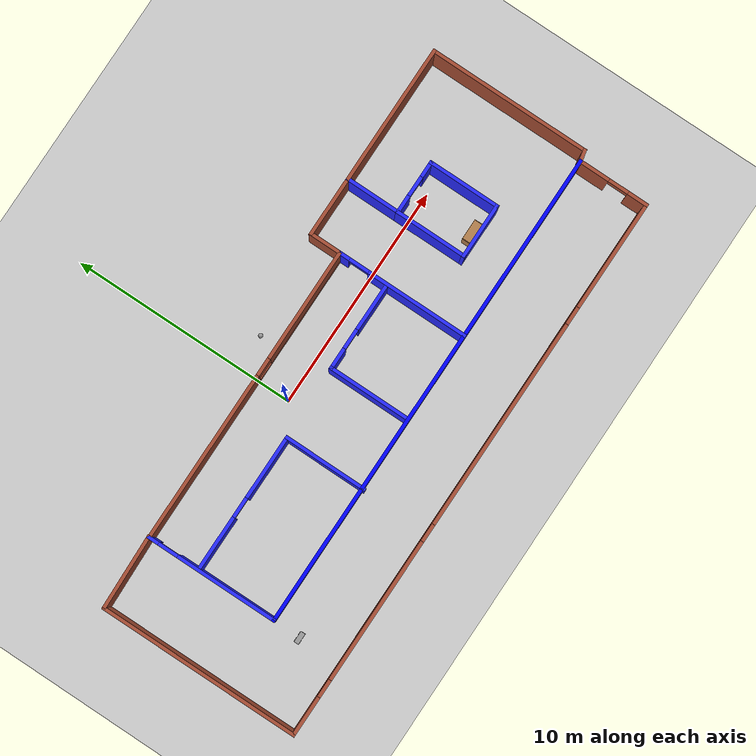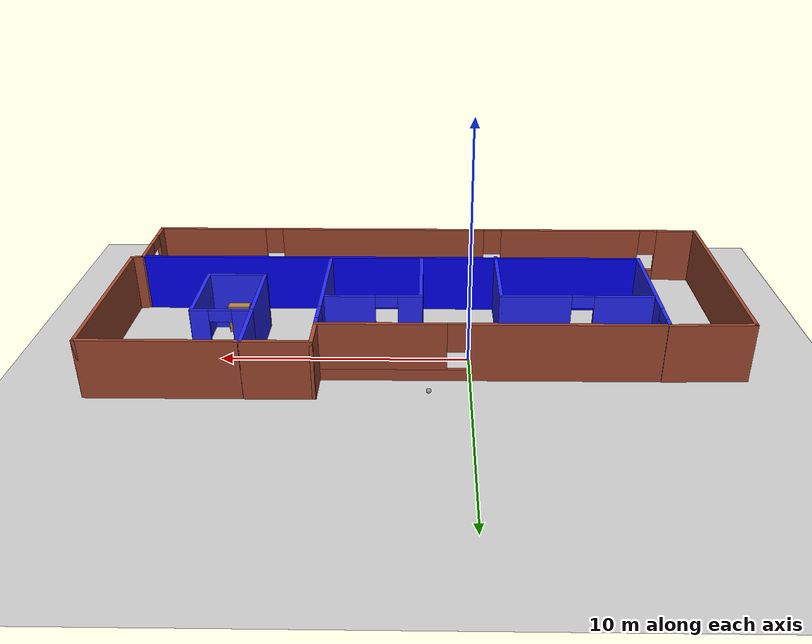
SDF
<sdf version="1.6">
 <world name="default">
  <plugin name="welcome_message" filename="libwelcome_message.so"/>
  <light name="sun" type="directional">
   <pose>0 0 10 0 -0 0</pose>
   <diffuse>0.8 0.8 0.8 1</diffuse>
   <specular>0.2 0.2 0.2 1</specular>
   <attenuation>
    <range>1000</range>
    <constant>0.9</constant>
    <linear>0.01</linear>
    <quadratic>0.001</quadratic>
   </attenuation>
   <direction>-0.5 0.1 -0.9</direction>
  </light>
  <model name="ground_plane">
   <static>1</static>
   <link name="link">
    <collision name="collision">
     <geometry><plane><normal>0 0 1</normal><size>100 100</size></plane></geometry>
     <surface><friction><ode><mu>100</mu><mu2>50</mu2></ode></friction></surface>
    </collision>
    <visual name="visual">
     <cast_shadows>0</cast_shadows>
     <geometry><plane><normal>0 0 1</normal><size>100 100</size></plane></geometry>
     <material>
      <script><uri>file://media/materials/scripts/gazebo.material</uri><name>Gazebo/Grey</name></script>
     </material>
    </visual>
   </link>
  </model>
  <gravity>0 0 -9.8</gravity>
  <magnetic_field>6e-06 2.3e-05 -4.2e-05</magnetic_field>
  <atmosphere type="adiabatic"/>
  <physics name="default_physics" default="0" type="ode">
   <max_step_size>0.001</max_step_size>
   <real_time_factor>1</real_time_factor>
   <real_time_update_rate>1000</real_time_update_rate>
  </physics>
  <scene><ambient>0.4 0.4 0.4 1</ambient><background>0.7 0.7 0.7 1</background><shadows>1</shadows></scene>
  <spherical_coordinates>
   <surface_model>EARTH_WGS84</surface_model>
   <latitude_deg>0</latitude_deg>
   <longitude_deg>0</longitude_deg>
   <elevation>0</elevation>
   <heading_deg>0</heading_deg>
  </spherical_coordinates>
  <model name="Building">
   <pose>1.9308 -2.3474 0 0 -0 0</pose>
   <link name="Wall_1">
    <collision name="Wall_1_Collision">
     <geometry><box><size>8.9769 0.15 2.5</size></box></geometry>
     <pose>0 0 1.25 0 -0 0</pose>
    </collision>
    <visual name="Wall_1_Visual">
     <pose>0 0 1.25 0 -0 0</pose>
     <geometry><box><size>8.9769 0.15 2.5</size></box></geometry>
     <material>
      <script><uri>file://media/materials/scripts/gazebo.material</uri><name>Gazebo/Bricks</name></script>
      <ambient>1 1 1 1</ambient>
     </material>
     <meta><layer>0</layer></meta>
    </visual>
    <pose>-12.6561 -0.736467 0 0 0 -1.56818</pose>
   </link>
   <link name="Wall_11">
    <pose>-2.73111 3.78853 0 0 -0 0.00173</pose>
    <visual name="Wall_11_Visual_0">
     <pose>-2.93301 0 1.25 0 -0 0</pose>
     <geometry><box><size>7.65719 0.15 2.5</size></box></geometry>
     <material>
      <script><uri>file://media/materials/scripts/gazebo.material</uri><name>Gazebo/Bricks</name></script>
      <ambient>1 1 1 1</ambient>
     </material>
     <meta><layer>0</layer></meta>
    </visual>
    <collision name="Wall_11_Collision_0">
     <geometry><box><size>7.65719 0.15 2.5</size></box></geometry>
     <pose>-2.93301 0 1.25 0 -0 0</pose>
    </collision>
    <visual name="Wall_11_Visual_1">
     <pose>3.8286 0 0.25 0 -0 0</pose>
     <geometry><box><size>5.86602 0.15 0.5</size></box></geometry>
     <material>
      <script><uri>file://media/materials/scripts/gazebo.material</uri><name>Gazebo/Bricks</name></script>
      <ambient>1 1 1 1</ambient>
     </material>
     <meta><layer>0</layer></meta>
    </visual>
    <collision name="Wall_11_Collision_1">
     <geometry><box><size>5.86602 0.15 0.5</size></box></geometry>
     <pose>3.8286 0 0.25 0 -0 0</pose>
    </collision>
    <visual name="Wall_11_Visual_2">
     <pose>4.2286 0 1.5 0 -0 0</pose>
     <geometry><box><size>5.06602 0.15 2</size></box></geometry>
     <material>
      <script><uri>file://media/materials/scripts/gazebo.material</uri><name>Gazebo/Bricks</name></script>
      <ambient>1 1 1 1</ambient>
     </material>
     <meta><layer>0</layer></meta>
    </visual>
    <collision name="Wall_11_Collision_2">
     <geometry><box><size>5.06602 0.15 2</size></box></geometry>
     <pose>4.2286 0 1.5 0 -0 0</pose>
    </collision>
    <visual name="Wall_11_Visual_3">
     <pose>1.29559 0 1.9 0 -0 0</pose>
     <geometry><box><size>0.8 0.15 1.2</size></box></geometry>
     <material>
      <script><uri>file://media/materials/scripts/gazebo.material</uri><name>Gazebo/Bricks</name></script>
      <ambient>1 1 1 1</ambient>
     </material>
     <meta><layer>0</layer></meta>
    </visual>
    <collision name="Wall_11_Collision_3">
     <geometry><box><size>0.8 0.15 1.2</size></box></geometry>
     <pose>1.29559 0 1.9 0 -0 0</pose>
    </collision>
   </link>
   <link name="Wall_12">
    <pose>3.95546 0.875098 0 0 0 -1.5708</pose>
    <visual name="Wall_12_Visual_0">
     <pose>-2.73271 0 1.25 0 -0 0</pose>
     <geometry><box><size>0.534571 0.15 2.5</size></box></geometry>
     <material>
      <script><uri>file://media/materials/scripts/gazebo.material</uri><name>Gazebo/Grey</name></script>
      <ambient>0.14902 0.160784 1 1</ambient>
     </material>
     <meta><layer>0</layer></meta>
    </visual>
    <collision name="Wall_12_Collision_0">
     <geometry><box><size>0.534571 0.15 2.5</size></box></geometry>
     <pose>-2.73271 0 1.25 0 -0 0</pose>
    </collision>
    <visual name="Wall_12_Visual_1">
     <pose>0.717286 0 1.25 0 -0 0</pose>
     <geometry><box><size>4.56543 0.15 2.5</size></box></geometry>
     <material>
      <script><uri>file://media/materials/scripts/gazebo.material</uri><name>Gazebo/Grey</name></script>
      <ambient>0.14902 0.160784 1 1</ambient>
     </material>
     <meta><layer>0</layer></meta>
    </visual>
    <collision name="Wall_12_Collision_1">
     <geometry><box><size>4.56543 0.15 2.5</size></box></geometry>
     <pose>0.717286 0 1.25 0 -0 0</pose>
    </collision>
    <visual name="Wall_12_Visual_2">
     <pose>-2.01543 0 2.25 0 -0 0</pose>
     <geometry><box><size>0.9 0.15 0.5</size></box></geometry>
     <material>
      <script><uri>file://media/materials/scripts/gazebo.material</uri><name>Gazebo/Grey</name></script>
      <ambient>0.14902 0.160784 1 1</ambient>
     </material>
     <meta><layer>0</layer></meta>
    </visual>
    <collision name="Wall_12_Collision_2">
     <geometry><box><size>0.9 0.15 0.5</size></box></geometry>
     <pose>-2.01543 0 2.25 0 -0 0</pose>
    </collision>
   </link>
   <link name="Wall_14">
    <collision name="Wall_14_Collision">
     <geometry><box><size>3.75 0.15 2.5</size></box></geometry>
     <pose>0 0 1.25 0 -0 0</pose>
    </collision>
    <visual name="Wall_14_Visual">
     <pose>0 0 1.25 0 -0 0</pose>
     <geometry><box><size>3.75 0.15 2.5</size></box></geometry>
     <material>
      <script><uri>file://media/materials/scripts/gazebo.material</uri><name>Gazebo/Grey</name></script>
      <ambient>0.14902 0.160784 1 1</ambient>
     </material>
     <meta><layer>0</layer></meta>
    </visual>
    <pose>0.007902 -0.236293 0 0 -0 1.5708</pose>
   </link>
   <link name="Wall_15">
    <pose>1.9329 1.56371 0 0 -0 0</pose>
    <visual name="Wall_15_Visual_0">
     <pose>-1.50515 0 1.25 0 -0 0</pose>
     <geometry><box><size>0.989706 0.15 2.5</size></box></geometry>
     <material>
      <script><uri>file://media/materials/scripts/gazebo.material</uri><name>Gazebo/Grey</name></script>
      <ambient>0.14902 0.160784 1 1</ambient>
     </material>
     <meta><layer>0</layer></meta>
    </visual>
    <collision name="Wall_15_Collision_0">
     <geometry><box><size>0.989706 0.15 2.5</size></box></geometry>
     <pose>-1.50515 0 1.25 0 -0 0</pose>
    </collision>
    <visual name="Wall_15_Visual_1">
     <pose>0.944853 0 1.25 0 -0 0</pose>
     <geometry><box><size>2.11029 0.15 2.5</size></box></geometry>
     <material>
      <script><uri>file://media/materials/scripts/gazebo.material</uri><name>Gazebo/Grey</name></script>
      <ambient>0.14902 0.160784 1 1</ambient>
     </material>
     <meta><layer>0</layer></meta>
    </visual>
    <collision name="Wall_15_Collision_1">
     <geometry><box><size>2.11029 0.15 2.5</size></box></geometry>
     <pose>0.944853 0 1.25 0 -0 0</pose>
    </collision>
    <visual name="Wall_15_Visual_2">
     <pose>-0.560294 0 2.25 0 -0 0</pose>
     <geometry><box><size>0.9 0.15 0.5</size></box></geometry>
     <material>
      <script><uri>file://media/materials/scripts/gazebo.material</uri><name>Gazebo/Grey</name></script>
      <ambient>0.14902 0.160784 1 1</ambient>
     </material>
     <meta><layer>0</layer></meta>
    </visual>
    <collision name="Wall_15_Collision_2">
     <geometry><box><size>0.9 0.15 0.5</size></box></geometry>
     <pose>-0.560294 0 2.25 0 -0 0</pose>
    </collision>
   </link>
   <link name="Wall_17">
    <collision name="Wall_17_Collision">
     <geometry><box><size>1.5 0.15 2.5</size></box></geometry>
     <pose>0 0 1.25 0 -0 0</pose>
    </collision>
    <visual name="Wall_17_Visual">
     <pose>0 0 1.25 0 -0 0</pose>
     <geometry><box><size>1.5 0.15 2.5</size></box></geometry>
     <material>
      <script><uri>file://media/materials/scripts/gazebo.material</uri><name>Gazebo/Bricks</name></script>
      <ambient>1 1 1 1</ambient>
     </material>
     <meta><layer>0</layer></meta>
    </visual>
    <pose>3.95546 4.4751 0 0 -0 1.5708</pose>
   </link>
   <link name="Wall_18">
    <collision name="Wall_18_Collision">
     <geometry><box><size>2.75 0.15 2.5</size></box></geometry>
     <pose>0 0 1.25 0 -0 0</pose>
    </collision>
    <visual name="Wall_18_Visual">
     <pose>0 0 1.25 0 -0 0</pose>
     <geometry><box><size>2.75 0.15 2.5</size></box></geometry>
     <material>
      <script><uri>file://media/materials/scripts/gazebo.material</uri><name>Gazebo/Bricks</name></script>
      <ambient>1 1 1 1</ambient>
     </material>
     <meta><layer>0</layer></meta>
    </visual>
    <pose>5.25546 5.1501 0 0 -0 0</pose>
   </link>
   <link name="Wall_19">
    <collision name="Wall_19_Collision">
     <geometry><box><size>2.5 0.15 2.5</size></box></geometry>
     <pose>0 0 1.25 0 -0 0</pose>
    </collision>
    <visual name="Wall_19_Visual">
     <pose>0 0 1.25 0 -0 0</pose>
     <geometry><box><size>2.5 0.15 2.5</size></box></geometry>
     <material>
      <script><uri>file://media/materials/scripts/gazebo.material</uri><name>Gazebo/Grey</name></script>
      <ambient>0.14902 0.160784 1 1</ambient>
     </material>
     <meta><layer>0</layer></meta>
    </visual>
    <pose>6.55546 3.9751 0 0 0 -1.5708</pose>
   </link>
   <link name="Wall_2">
    <pose>-0.219541 -5.1499 0 0 -0 0</pose>
    <visual name="Wall_2_Visual_0">
     <pose>-11.5869 0 1.25 0 -0 0</pose>
     <geometry><box><size>1.82615 0.15 2.5</size></box></geometry>
     <material>
      <script><uri>file://media/materials/scripts/gazebo.material</uri><name>Gazebo/Bricks</name></script>
      <ambient>1 1 1 1</ambient>
     </material>
     <meta><layer>0</layer></meta>
    </visual>
    <collision name="Wall_2_Collision_0">
     <geometry><box><size>1.82615 0.15 2.5</size></box></geometry>
     <pose>-11.5869 0 1.25 0 -0 0</pose>
    </collision>
    <visual name="Wall_2_Visual_1">
     <pose>0.913073 0 0.25 0 -0 0</pose>
     <geometry><box><size>23.1739 0.15 0.5</size></box></geometry>
     <material>
      <script><uri>file://media/materials/scripts/gazebo.material</uri><name>Gazebo/Bricks</name></script>
      <ambient>1 1 1 1</ambient>
     </material>
     <meta><layer>0</layer></meta>
    </visual>
    <collision name="Wall_2_Collision_1">
     <geometry><box><size>23.1739 0.15 0.5</size></box></geometry>
     <pose>0.913073 0 0.25 0 -0 0</pose>
    </collision>
    <visual name="Wall_2_Visual_2">
     <pose>-6.65391 0 1.5 0 -0 0</pose>
     <geometry><box><size>6.43988 0.15 2</size></box></geometry>
     <material>
      <script><uri>file://media/materials/scripts/gazebo.material</uri><name>Gazebo/Bricks</name></script>
      <ambient>1 1 1 1</ambient>
     </material>
     <meta><layer>0</layer></meta>
    </visual>
    <collision name="Wall_2_Collision_2">
     <geometry><box><size>6.43988 0.15 2</size></box></geometry>
     <pose>-6.65391 0 1.5 0 -0 0</pose>
    </collision>
    <visual name="Wall_2_Visual_3">
     <pose>2.06633 0 1.5 0 -0 0</pose>
     <geometry><box><size>9.4006 0.15 2</size></box></geometry>
     <material>
      <script><uri>file://media/materials/scripts/gazebo.material</uri><name>Gazebo/Bricks</name></script>
      <ambient>1 1 1 1</ambient>
     </material>
     <meta><layer>0</layer></meta>
    </visual>
    <collision name="Wall_2_Collision_3">
     <geometry><box><size>9.4006 0.15 2</size></box></geometry>
     <pose>2.06633 0 1.5 0 -0 0</pose>
    </collision>
    <visual name="Wall_2_Visual_4">
     <pose>10.0333 0 1.5 0 -0 0</pose>
     <geometry><box><size>4.93337 0.15 2</size></box></geometry>
     <material>
      <script><uri>file://media/materials/scripts/gazebo.material</uri><name>Gazebo/Bricks</name></script>
      <ambient>1 1 1 1</ambient>
     </material>
     <meta><layer>0</layer></meta>
    </visual>
    <collision name="Wall_2_Collision_4">
     <geometry><box><size>4.93337 0.15 2</size></box></geometry>
     <pose>10.0333 0 1.5 0 -0 0</pose>
    </collision>
    <visual name="Wall_2_Visual_5">
     <pose>-10.2739 0 1.9 0 -0 0</pose>
     <geometry><box><size>0.8 0.15 1.2</size></box></geometry>
     <material>
      <script><uri>file://media/materials/scripts/gazebo.material</uri><name>Gazebo/Bricks</name></script>
      <ambient>1 1 1 1</ambient>
     </material>
     <meta><layer>0</layer></meta>
    </visual>
    <collision name="Wall_2_Collision_5">
     <geometry><box><size>0.8 0.15 1.2</size></box></geometry>
     <pose>-10.2739 0 1.9 0 -0 0</pose>
    </collision>
    <visual name="Wall_2_Visual_6">
     <pose>-3.03397 0 1.9 0 -0 0</pose>
     <geometry><box><size>0.8 0.15 1.2</size></box></geometry>
     <material>
      <script><uri>file://media/materials/scripts/gazebo.material</uri><name>Gazebo/Bricks</name></script>
      <ambient>1 1 1 1</ambient>
     </material>
     <meta><layer>0</layer></meta>
    </visual>
    <collision name="Wall_2_Collision_6">
     <geometry><box><size>0.8 0.15 1.2</size></box></geometry>
     <pose>-3.03397 0 1.9 0 -0 0</pose>
    </collision>
    <visual name="Wall_2_Visual_7">
     <pose>7.16662 0 1.9 0 -0 0</pose>
     <geometry><box><size>0.8 0.15 1.2</size></box></geometry>
     <material>
      <script><uri>file://media/materials/scripts/gazebo.material</uri><name>Gazebo/Bricks</name></script>
      <ambient>1 1 1 1</ambient>
     </material>
     <meta><layer>0</layer></meta>
    </visual>
    <collision name="Wall_2_Collision_7">
     <geometry><box><size>0.8 0.15 1.2</size></box></geometry>
     <pose>7.16662 0 1.9 0 -0 0</pose>
    </collision>
   </link>
   <link name="Wall_20">
    <pose>7.73046 2.8001 0 0 -0 0</pose>
    <visual name="Wall_20_Visual_0">
     <pose>-0.825337 0 1.25 0 -0 0</pose>
     <geometry><box><size>0.849326 0.15 2.5</size></box></geometry>
     <material>
      <script><uri>file://media/materials/scripts/gazebo.material</uri><name>Gazebo/Grey</name></script>
      <ambient>0.14902 0.160784 1 1</ambient>
     </material>
     <meta><layer>0</layer></meta>
    </visual>
    <collision name="Wall_20_Collision_0">
     <geometry><box><size>0.849326 0.15 2.5</size></box></geometry>
     <pose>-0.825337 0 1.25 0 -0 0</pose>
    </collision>
    <visual name="Wall_20_Visual_1">
     <pose>0.874663 0 1.25 0 -0 0</pose>
     <geometry><box><size>0.750674 0.15 2.5</size></box></geometry>
     <material>
      <script><uri>file://media/materials/scripts/gazebo.material</uri><name>Gazebo/Grey</name></script>
      <ambient>0.14902 0.160784 1 1</ambient>
     </material>
     <meta><layer>0</layer></meta>
    </visual>
    <collision name="Wall_20_Collision_1">
     <geometry><box><size>0.750674 0.15 2.5</size></box></geometry>
     <pose>0.874663 0 1.25 0 -0 0</pose>
    </collision>
    <visual name="Wall_20_Visual_2">
     <pose>0.049326 0 2.25 0 -0 0</pose>
     <geometry><box><size>0.9 0.15 0.5</size></box></geometry>
     <material>
      <script><uri>file://media/materials/scripts/gazebo.material</uri><name>Gazebo/Grey</name></script>
      <ambient>0.14902 0.160784 1 1</ambient>
     </material>
     <meta><layer>0</layer></meta>
    </visual>
    <collision name="Wall_20_Collision_2">
     <geometry><box><size>0.9 0.15 0.5</size></box></geometry>
     <pose>0.049326 0 2.25 0 -0 0</pose>
    </collision>
   </link>
   <link name="Wall_21">
    <collision name="Wall_21_Collision">
     <geometry><box><size>3.25 0.15 2.5</size></box></geometry>
     <pose>0 0 1.25 0 -0 0</pose>
    </collision>
    <visual name="Wall_21_Visual">
     <pose>0 0 1.25 0 -0 0</pose>
     <geometry><box><size>3.25 0.15 2.5</size></box></geometry>
     <material>
      <script><uri>file://media/materials/scripts/gazebo.material</uri><name>Gazebo/Grey</name></script>
      <ambient>0.14902 0.160784 1 1</ambient>
     </material>
     <meta><layer>0</layer></meta>
    </visual>
    <pose>8.90546 1.2501 0 0 0 -1.5708</pose>
   </link>
   <link name="Wall_22">
    <collision name="Wall_22_Collision">
     <geometry><box><size>2.5 0.15 2.5</size></box></geometry>
     <pose>0 0 1.25 0 -0 0</pose>
    </collision>
    <visual name="Wall_22_Visual">
     <pose>0 0 1.25 0 -0 0</pose>
     <geometry><box><size>2.5 0.15 2.5</size></box></geometry>
     <material>
      <script><uri>file://media/materials/scripts/gazebo.material</uri><name>Gazebo/Grey</name></script>
      <ambient>0.152941 0.164706 1 1</ambient>
     </material>
     <meta><layer>0</layer></meta>
    </visual>
    <pose>7.73046 -0.299902 0 0 -0 3.14159</pose>
   </link>
   <link name="Wall_23">
    <collision name="Wall_23_Collision">
     <geometry><box><size>3.25 0.15 2.5</size></box></geometry>
     <pose>0 0 1.25 0 -0 0</pose>
    </collision>
    <visual name="Wall_23_Visual">
     <pose>0 0 1.25 0 -0 0</pose>
     <geometry><box><size>3.25 0.15 2.5</size></box></geometry>
     <material>
      <script><uri>file://media/materials/scripts/gazebo.material</uri><name>Gazebo/Grey</name></script>
      <ambient>0.14902 0.160784 1 1</ambient>
     </material>
     <meta><layer>0</layer></meta>
    </visual>
    <pose>6.55546 1.2501 0 0 -0 1.5708</pose>
   </link>
   <link name="Wall_25">
    <collision name="Wall_25_Collision">
     <geometry><box><size>6.25 0.15 2.5</size></box></geometry>
     <pose>0 0 1.25 0 -0 0</pose>
    </collision>
    <visual name="Wall_25_Visual">
     <pose>0 0 1.25 0 -0 0</pose>
     <geometry><box><size>6.25 0.15 2.5</size></box></geometry>
     <material>
      <script><uri>file://media/materials/scripts/gazebo.material</uri><name>Gazebo/Bricks</name></script>
      <ambient>1 1 1 1</ambient>
     </material>
     <meta><layer>0</layer></meta>
    </visual>
    <pose>9.60546 5.1501 0 0 -0 0</pose>
   </link>
   <link name="Wall_26">
    <collision name="Wall_26_Collision">
     <geometry><box><size>7.25 0.15 2.5</size></box></geometry>
     <pose>0 0 1.25 0 -0 0</pose>
    </collision>
    <visual name="Wall_26_Visual">
     <pose>0 0 1.25 0 -0 0</pose>
     <geometry><box><size>7.25 0.15 2.5</size></box></geometry>
     <material>
      <script><uri>file://media/materials/scripts/gazebo.material</uri><name>Gazebo/Bricks</name></script>
      <ambient>1 1 1 1</ambient>
     </material>
     <meta><layer>0</layer></meta>
    </visual>
    <pose>12.6555 1.6001 0 0 0 -1.5708</pose>
   </link>
   <link name="Wall_27">
    <collision name="Wall_27_Collision">
     <geometry><box><size>0.610977 0.15 2.5</size></box></geometry>
     <pose>0 0 1.25 0 -0 0</pose>
    </collision>
    <visual name="Wall_27_Visual">
     <pose>0 0 1.25 0 -0 0</pose>
     <geometry><box><size>0.610977 0.15 2.5</size></box></geometry>
     <material>
      <script><uri>file://media/materials/scripts/gazebo.material</uri><name>Gazebo/Bricks</name></script>
      <ambient>1 1 1 1</ambient>
     </material>
     <meta><layer>0</layer></meta>
    </visual>
    <pose>12.4305 -1.9999 0 0 0 -2.92292</pose>
   </link>
   <link name="Wall_3">
    <pose>12.2055 -3.5999 0 0 -0 1.5708</pose>
    <visual name="Wall_3_Visual_0">
     <pose>-1.15779 0 1.25 0 -0 0</pose>
     <geometry><box><size>0.934422 0.15 2.5</size></box></geometry>
     <material>
      <script><uri>file://media/materials/scripts/gazebo.material</uri><name>Gazebo/Bricks</name></script>
      <ambient>1 1 1 1</ambient>
     </material>
     <meta><layer>0</layer></meta>
    </visual>
    <collision name="Wall_3_Collision_0">
     <geometry><box><size>0.934422 0.15 2.5</size></box></geometry>
     <pose>-1.15779 0 1.25 0 -0 0</pose>
    </collision>
    <visual name="Wall_3_Visual_1">
     <pose>0.917211 0 1.25 0 -0 0</pose>
     <geometry><box><size>1.41558 0.15 2.5</size></box></geometry>
     <material>
      <script><uri>file://media/materials/scripts/gazebo.material</uri><name>Gazebo/Bricks</name></script>
      <ambient>1 1 1 1</ambient>
     </material>
     <meta><layer>0</layer></meta>
    </visual>
    <collision name="Wall_3_Collision_1">
     <geometry><box><size>1.41558 0.15 2.5</size></box></geometry>
     <pose>0.917211 0 1.25 0 -0 0</pose>
    </collision>
    <visual name="Wall_3_Visual_2">
     <pose>-0.240578 0 2.25 0 -0 0</pose>
     <geometry><box><size>0.9 0.15 0.5</size></box></geometry>
     <material>
      <script><uri>file://media/materials/scripts/gazebo.material</uri><name>Gazebo/Bricks</name></script>
      <ambient>1 1 1 1</ambient>
     </material>
     <meta><layer>0</layer></meta>
    </visual>
    <collision name="Wall_3_Collision_2">
     <geometry><box><size>0.9 0.15 0.5</size></box></geometry>
     <pose>-0.240578 0 2.25 0 -0 0</pose>
    </collision>
   </link>
   <link name="Wall_4">
    <collision name="Wall_4_Collision">
     <geometry><box><size>21.75 0.15 2.5</size></box></geometry>
     <pose>0 0 1.25 0 -0 0</pose>
    </collision>
    <visual name="Wall_4_Visual">
     <pose>0 0 1.25 0 -0 0</pose>
     <geometry><box><size>21.75 0.15 2.5</size></box></geometry>
     <material>
      <script><uri>file://media/materials/scripts/gazebo.material</uri><name>Gazebo/Grey</name></script>
      <ambient>0 0 1 1</ambient>
     </material>
     <meta><layer>0</layer></meta>
    </visual>
    <pose>1.40546 -2.0499 0 0 -0 3.14159</pose>
   </link>
   <link name="Wall_5">
    <pose>-9.40611 0.863533 0 0 -0 1.57477</pose>
    <visual name="Wall_5_Visual_0">
     <pose>-0.703971 0 1.25 0 -0 0</pose>
     <geometry><box><size>4.56897 0.15 2.5</size></box></geometry>
     <material>
      <script><uri>file://media/materials/scripts/gazebo.material</uri><name>Gazebo/Grey</name></script>
      <ambient>0.14902 0.160784 1 1</ambient>
     </material>
     <meta><layer>0</layer></meta>
    </visual>
    <collision name="Wall_5_Collision_0">
     <geometry><box><size>4.56897 0.15 2.5</size></box></geometry>
     <pose>-0.703971 0 1.25 0 -0 0</pose>
    </collision>
    <visual name="Wall_5_Visual_1">
     <pose>2.73449 0 1.25 0 -0 0</pose>
     <geometry><box><size>0.507943 0.15 2.5</size></box></geometry>
     <material>
      <script><uri>file://media/materials/scripts/gazebo.material</uri><name>Gazebo/Grey</name></script>
      <ambient>0.14902 0.160784 1 1</ambient>
     </material>
     <meta><layer>0</layer></meta>
    </visual>
    <collision name="Wall_5_Collision_1">
     <geometry><box><size>0.507943 0.15 2.5</size></box></geometry>
     <pose>2.73449 0 1.25 0 -0 0</pose>
    </collision>
    <visual name="Wall_5_Visual_2">
     <pose>2.03051 0 2.25 0 -0 0</pose>
     <geometry><box><size>0.9 0.15 0.5</size></box></geometry>
     <material>
      <script><uri>file://media/materials/scripts/gazebo.material</uri><name>Gazebo/Grey</name></script>
      <ambient>0.14902 0.160784 1 1</ambient>
     </material>
     <meta><layer>0</layer></meta>
    </visual>
    <collision name="Wall_5_Collision_2">
     <geometry><box><size>0.9 0.15 0.5</size></box></geometry>
     <pose>2.03051 0 2.25 0 -0 0</pose>
    </collision>
   </link>
   <link name="Wall_6">
    <collision name="Wall_6_Collision">
     <geometry><box><size>3.40154 0.15 2.5</size></box></geometry>
     <pose>0 0 1.25 0 -0 0</pose>
    </collision>
    <visual name="Wall_6_Visual">
     <pose>0 0 1.25 0 -0 0</pose>
     <geometry><box><size>3.40154 0.15 2.5</size></box></geometry>
     <material>
      <script><uri>file://media/materials/scripts/gazebo.material</uri><name>Gazebo/Bricks</name></script>
      <ambient>1 1 1 1</ambient>
     </material>
     <meta><layer>0</layer></meta>
    </visual>
    <pose>-11.0427 3.7501 0 0 0 -3.11083</pose>
   </link>
   <link name="Wall_8">
    <pose>-6.26373 1.47956 0 0 -0 0</pose>
    <visual name="Wall_8_Visual_0">
     <pose>-1.90153 0 1.25 0 -0 0</pose>
     <geometry><box><size>2.44693 0.15 2.5</size></box></geometry>
     <material>
      <script><uri>file://media/materials/scripts/gazebo.material</uri><name>Gazebo/Grey</name></script>
      <ambient>0.14902 0.160784 1 1</ambient>
     </material>
     <meta><layer>0</layer></meta>
    </visual>
    <collision name="Wall_8_Collision_0">
     <geometry><box><size>2.44693 0.15 2.5</size></box></geometry>
     <pose>-1.90153 0 1.25 0 -0 0</pose>
    </collision>
    <visual name="Wall_8_Visual_1">
     <pose>1.67347 0 1.25 0 -0 0</pose>
     <geometry><box><size>2.90306 0.15 2.5</size></box></geometry>
     <material>
      <script><uri>file://media/materials/scripts/gazebo.material</uri><name>Gazebo/Grey</name></script>
      <ambient>0.14902 0.160784 1 1</ambient>
     </material>
     <meta><layer>0</layer></meta>
    </visual>
    <collision name="Wall_8_Collision_1">
     <geometry><box><size>2.90306 0.15 2.5</size></box></geometry>
     <pose>1.67347 0 1.25 0 -0 0</pose>
    </collision>
    <visual name="Wall_8_Visual_2">
     <pose>-0.228065 0 2.25 0 -0 0</pose>
     <geometry><box><size>0.9 0.15 0.5</size></box></geometry>
     <material>
      <script><uri>file://media/materials/scripts/gazebo.material</uri><name>Gazebo/Grey</name></script>
      <ambient>0.14902 0.160784 1 1</ambient>
     </material>
     <meta><layer>0</layer></meta>
    </visual>
    <collision name="Wall_8_Collision_2">
     <geometry><box><size>0.9 0.15 0.5</size></box></geometry>
     <pose>-0.228065 0 2.25 0 -0 0</pose>
    </collision>
   </link>
   <link name="Wall_9">
    <collision name="Wall_9_Collision">
     <geometry><box><size>3.75 0.15 2.5</size></box></geometry>
     <pose>0 0 1.25 0 -0 0</pose>
    </collision>
    <visual name="Wall_9_Visual">
     <pose>0 0 1.25 0 -0 0</pose>
     <geometry><box><size>3.75 0.15 2.5</size></box></geometry>
     <material>
      <script><uri>file://media/materials/scripts/gazebo.material</uri><name>Gazebo/Grey</name></script>
      <ambient>0.14902 0.160784 1 1</ambient>
     </material>
     <meta><layer>0</layer></meta>
    </visual>
    <pose>-3.21373 -0.32044 0 0 0 -1.5708</pose>
   </link>
   <static>1</static>
  </model>
  <model name="Robot_0">
   <link name="link_0">
    <pose>0 5e-06 -0.019995 0 -0 0</pose>
    <inertial>
     <mass>1</mass>
     <inertia>
      <ixx>0.166667</ixx>
      <ixy>0</ixy>
      <ixz>0</ixz>
      <iyy>0.166667</iyy>
      <iyz>0</iyz>
      <izz>0.166667</izz>
     </inertia>
    </inertial>
    <visual name="visual">
     <geometry><box><size>0.5 0.2 0.1</size></box></geometry>
     <material>
      <lighting>1</lighting>
      <script><uri>file://media/materials/scripts/gazebo.material</uri><name>Gazebo/Grey</name></script>
      <shader type="pixel"><normal_map>__default__</normal_map></shader>
      <ambient>0.3 0.3 0.3 1</ambient>
      <diffuse>0.7 0.7 0.7 1</diffuse>
      <specular>0.01 0.01 0.01 1</specular>
      <emissive>0 0 0 1</emissive>
     </material>
    </visual>
    <collision name="collision">
     <geometry><box><size>0.5 0.2 0.1</size></box></geometry>
     <surface>
      <friction>
       <ode><mu>1</mu><mu2>1</mu2><fdir1>0 0 0</fdir1><slip1>0</slip1><slip2>0</slip2></ode>
       <torsional>
        <coefficient>1</coefficient>
        <patch_radius>0</patch_radius>
        <surface_radius>0</surface_radius>
        <use_patch_radius>1</use_patch_radius>
        <ode><slip>0</slip></ode>
       </torsional>
      </friction>
      <bounce><restitution_coefficient>0</restitution_coefficient><threshold>1e+06</threshold></bounce>
      <contact>
       <collide_without_contact>0</collide_without_contact>
       <collide_without_contact_bitmask>1</collide_without_contact_bitmask>
       <collide_bitmask>1</collide_bitmask>
       <ode>
        <soft_cfm>0</soft_cfm>
        <soft_erp>0.2</soft_erp>
        <kp>1e+13</kp>
        <kd>1</kd>
        <max_vel>0.01</max_vel>
        <min_depth>0</min_depth>
       </ode>
       <bullet>
        <split_impulse>1</split_impulse>
        <split_impulse_penetration_threshold>-0.01</split_impulse_penetration_threshold>
        <soft_cfm>0</soft_cfm>
        <soft_erp>0.2</soft_erp>
        <kp>1e+13</kp>
        <kd>1</kd>
       </bullet>
      </contact>
     </surface>
    </collision>
   </link>
   <link name="link_3">
    <pose>-0.15 -0.110009 0.004999 1.5707 -0 0</pose>
    <inertial>
     <mass>1</mass>
     <inertia><ixx>0.145833</ixx><ixy>0</ixy><ixz>0</ixz><iyy>0.145833</iyy><iyz>0</iyz><izz>0.125</izz></inertia>
    </inertial>
    <visual name="visual">
     <geometry><cylinder><radius>0.1</radius><length>0.02</length></cylinder></geometry>
     <material>
      <lighting>1</lighting>
      <script><uri>file://media/materials/scripts/gazebo.material</uri><name>Gazebo/Grey</name></script>
      <shader type="pixel"><normal_map>__default__</normal_map></shader>
      <ambient>0.3 0.3 0.3 1</ambient>
      <diffuse>0.7 0.7 0.7 1</diffuse>
      <specular>0.01 0.01 0.01 1</specular>
      <emissive>0 0 0 1</emissive>
     </material>
    </visual>
    <collision name="collision">
     <geometry><cylinder><radius>0.1</radius><length>0.02</length></cylinder></geometry>
     <surface>
      <friction>
       <ode><mu>1</mu><mu2>1</mu2><fdir1>0 0 0</fdir1><slip1>0</slip1><slip2>0</slip2></ode>
       <torsional>
        <coefficient>1</coefficient>
        <patch_radius>0</patch_radius>
        <surface_radius>0</surface_radius>
        <use_patch_radius>1</use_patch_radius>
        <ode><slip>0</slip></ode>
       </torsional>
      </friction>
      <bounce><restitution_coefficient>0</restitution_coefficient><threshold>1e+06</threshold></bounce>
      <contact>
       <collide_without_contact>0</collide_without_contact>
       <collide_without_contact_bitmask>1</collide_without_contact_bitmask>
       <collide_bitmask>1</collide_bitmask>
       <ode>
        <soft_cfm>0</soft_cfm>
        <soft_erp>0.2</soft_erp>
        <kp>1e+13</kp>
        <kd>1</kd>
        <max_vel>0.01</max_vel>
        <min_depth>0</min_depth>
       </ode>
       <bullet>
        <split_impulse>1</split_impulse>
        <split_impulse_penetration_threshold>-0.01</split_impulse_penetration_threshold>
        <soft_cfm>0</soft_cfm>
        <soft_erp>0.2</soft_erp>
        <kp>1e+13</kp>
        <kd>1</kd>
       </bullet>
      </contact>
     </surface>
    </collision>
   </link>
   <link name="link_3_clone">
    <pose>0.15 -0.110005 0.004999 1.5707 -0 0</pose>
    <inertial>
     <mass>1</mass>
     <inertia><ixx>0.145833</ixx><ixy>0</ixy><ixz>0</ixz><iyy>0.145833</iyy><iyz>0</iyz><izz>0.125</izz></inertia>
    </inertial>
    <visual name="visual">
     <geometry><cylinder><radius>0.1</radius><length>0.02</length></cylinder></geometry>
     <material>
      <lighting>1</lighting>
      <script><uri>file://media/materials/scripts/gazebo.material</uri><name>Gazebo/Grey</name></script>
      <shader type="pixel"><normal_map>__default__</normal_map></shader>
      <ambient>0.3 0.3 0.3 1</ambient>
      <diffuse>0.7 0.7 0.7 1</diffuse>
      <specular>0.01 0.01 0.01 1</specular>
      <emissive>0 0 0 1</emissive>
     </material>
    </visual>
    <collision name="collision">
     <geometry><cylinder><radius>0.1</radius><length>0.02</length></cylinder></geometry>
     <surface>
      <friction>
       <ode><mu>1</mu><mu2>1</mu2><fdir1>0 0 0</fdir1><slip1>0</slip1><slip2>0</slip2></ode>
       <torsional>
        <coefficient>1</coefficient>
        <patch_radius>0</patch_radius>
        <surface_radius>0</surface_radius>
        <use_patch_radius>1</use_patch_radius>
        <ode><slip>0</slip></ode>
       </torsional>
      </friction>
      <bounce><restitution_coefficient>0</restitution_coefficient><threshold>1e+06</threshold></bounce>
      <contact>
       <collide_without_contact>0</collide_without_contact>
       <collide_without_contact_bitmask>1</collide_without_contact_bitmask>
       <collide_bitmask>1</collide_bitmask>
       <ode>
        <soft_cfm>0</soft_cfm>
        <soft_erp>0.2</soft_erp>
        <kp>1e+13</kp>
        <kd>1</kd>
        <max_vel>0.01</max_vel>
        <min_depth>0</min_depth>
       </ode>
       <bullet>
        <split_impulse>1</split_impulse>
        <split_impulse_penetration_threshold>-0.01</split_impulse_penetration_threshold>
        <soft_cfm>0</soft_cfm>
        <soft_erp>0.2</soft_erp>
        <kp>1e+13</kp>
        <kd>1</kd>
       </bullet>
      </contact>
     </surface>
    </collision>
   </link>
   <link name="link_3_clone_0">
    <pose>-0.15 0.110005 0.004999 1.5707 -0 0</pose>
    <inertial>
     <mass>1</mass>
     <inertia><ixx>0.145833</ixx><ixy>0</ixy><ixz>0</ixz><iyy>0.145833</iyy><iyz>0</iyz><izz>0.125</izz></inertia>
    </inertial>
    <visual name="visual">
     <geometry><cylinder><radius>0.1</radius><length>0.02</length></cylinder></geometry>
     <material>
      <lighting>1</lighting>
      <script><uri>file://media/materials/scripts/gazebo.material</uri><name>Gazebo/Grey</name></script>
      <shader type="pixel"><normal_map>__default__</normal_map></shader>
      <ambient>0.3 0.3 0.3 1</ambient>
      <diffuse>0.7 0.7 0.7 1</diffuse>
      <specular>0.01 0.01 0.01 1</specular>
      <emissive>0 0 0 1</emissive>
     </material>
    </visual>
    <collision name="collision">
     <geometry><cylinder><radius>0.1</radius><length>0.02</length></cylinder></geometry>
     <surface>
      <friction>
       <ode><mu>1</mu><mu2>1</mu2><fdir1>0 0 0</fdir1><slip1>0</slip1><slip2>0</slip2></ode>
       <torsional>
        <coefficient>1</coefficient>
        <patch_radius>0</patch_radius>
        <surface_radius>0</surface_radius>
        <use_patch_radius>1</use_patch_radius>
        <ode><slip>0</slip></ode>
       </torsional>
      </friction>
      <bounce><restitution_coefficient>0</restitution_coefficient><threshold>1e+06</threshold></bounce>
      <contact>
       <collide_without_contact>0</collide_without_contact>
       <collide_without_contact_bitmask>1</collide_without_contact_bitmask>
       <collide_bitmask>1</collide_bitmask>
       <ode>
        <soft_cfm>0</soft_cfm>
        <soft_erp>0.2</soft_erp>
        <kp>1e+13</kp>
        <kd>1</kd>
        <max_vel>0.01</max_vel>
        <min_depth>0</min_depth>
       </ode>
       <bullet>
        <split_impulse>1</split_impulse>
        <split_impulse_penetration_threshold>-0.01</split_impulse_penetration_threshold>
        <soft_cfm>0</soft_cfm>
        <soft_erp>0.2</soft_erp>
        <kp>1e+13</kp>
        <kd>1</kd>
       </bullet>
      </contact>
     </surface>
    </collision>
   </link>
   <link name="link_3_clone_1">
    <pose>0.15 0.110005 0.004999 1.5707 -0 0</pose>
    <inertial>
     <mass>1</mass>
     <inertia><ixx>0.145833</ixx><ixy>0</ixy><ixz>0</ixz><iyy>0.145833</iyy><iyz>0</iyz><izz>0.125</izz></inertia>
    </inertial>
    <visual name="visual">
     <geometry><cylinder><radius>0.1</radius><length>0.02</length></cylinder></geometry>
     <material>
      <lighting>1</lighting>
      <script><uri>file://media/materials/scripts/gazebo.material</uri><name>Gazebo/Grey</name></script>
      <shader type="pixel"><normal_map>__default__</normal_map></shader>
      <ambient>0.3 0.3 0.3 1</ambient>
      <diffuse>0.7 0.7 0.7 1</diffuse>
      <specular>0.01 0.01 0.01 1</specular>
      <emissive>0 0 0 1</emissive>
     </material>
    </visual>
    <collision name="collision">
     <geometry><cylinder><radius>0.1</radius><length>0.02</length></cylinder></geometry>
     <surface>
      <friction>
       <ode><mu>1</mu><mu2>1</mu2><fdir1>0 0 0</fdir1><slip1>0</slip1><slip2>0</slip2></ode>
       <torsional>
        <coefficient>1</coefficient>
        <patch_radius>0</patch_radius>
        <surface_radius>0</surface_radius>
        <use_patch_radius>1</use_patch_radius>
        <ode><slip>0</slip></ode>
       </torsional>
      </friction>
      <bounce><restitution_coefficient>0</restitution_coefficient><threshold>1e+06</threshold></bounce>
      <contact>
       <collide_without_contact>0</collide_without_contact>
       <collide_without_contact_bitmask>1</collide_without_contact_bitmask>
       <collide_bitmask>1</collide_bitmask>
       <ode>
        <soft_cfm>0</soft_cfm>
        <soft_erp>0.2</soft_erp>
        <kp>1e+13</kp>
        <kd>1</kd>
        <max_vel>0.01</max_vel>
        <min_depth>0</min_depth>
       </ode>
       <bullet>
        <split_impulse>1</split_impulse>
        <split_impulse_penetration_threshold>-0.01</split_impulse_penetration_threshold>
        <soft_cfm>0</soft_cfm>
        <soft_erp>0.2</soft_erp>
        <kp>1e+13</kp>
        <kd>1</kd>
       </bullet>
      </contact>
     </surface>
    </collision>
   </link>
   <joint name="link_0_JOINT_0" type="revolute">
    <parent>link_0</parent>
    <child>link_3</child>
    <axis>
     <xyz>0 0 1</xyz>
     <use_parent_model_frame>0</use_parent_model_frame>
     <limit>
      <lower>-1.79769e+308</lower>
      <upper>1.79769e+308</upper>
      <effort>-1</effort>
      <velocity>-1</velocity>
     </limit>
     <dynamics>
      <spring_reference>0</spring_reference>
      <spring_stiffness>0</spring_stiffness>
      <damping>0</damping>
      <friction>0</friction>
     </dynamics>
    </axis>
    <physics>
     <ode><limit><cfm>0</cfm><erp>0.2</erp></limit><suspension><cfm>0</cfm><erp>0.2</erp></suspension></ode>
    </physics>
   </joint>
   <joint name="link_0_JOINT_1" type="revolute">
    <parent>link_0</parent>
    <child>link_3_clone</child>
    <axis>
     <xyz>0 0 1</xyz>
     <use_parent_model_frame>0</use_parent_model_frame>
     <limit>
      <lower>-1.79769e+308</lower>
      <upper>1.79769e+308</upper>
      <effort>-1</effort>
      <velocity>-1</velocity>
     </limit>
     <dynamics>
      <spring_reference>0</spring_reference>
      <spring_stiffness>0</spring_stiffness>
      <damping>0</damping>
      <friction>0</friction>
     </dynamics>
    </axis>
    <physics>
     <ode><limit><cfm>0</cfm><erp>0.2</erp></limit><suspension><cfm>0</cfm><erp>0.2</erp></suspension></ode>
    </physics>
   </joint>
   <joint name="link_0_JOINT_2" type="revolute">
    <parent>link_0</parent>
    <child>link_3_clone_0</child>
    <pose>0 0 0 0 0 -0.01</pose>
    <axis>
     <xyz>0 0 1</xyz>
     <use_parent_model_frame>0</use_parent_model_frame>
     <limit>
      <lower>-1.79769e+308</lower>
      <upper>1.79769e+308</upper>
      <effort>-1</effort>
      <velocity>-1</velocity>
     </limit>
     <dynamics>
      <spring_reference>0</spring_reference>
      <spring_stiffness>0</spring_stiffness>
      <damping>0</damping>
      <friction>0</friction>
     </dynamics>
    </axis>
    <physics>
     <ode><limit><cfm>0</cfm><erp>0.2</erp></limit><suspension><cfm>0</cfm><erp>0.2</erp></suspension></ode>
    </physics>
   </joint>
   <joint name="link_0_JOINT_3" type="revolute">
    <parent>link_0</parent>
    <child>link_3_clone_1</child>
    <axis>
     <xyz>0 0 1</xyz>
     <use_parent_model_frame>0</use_parent_model_frame>
     <limit>
      <lower>-1.79769e+308</lower>
      <upper>1.79769e+308</upper>
      <effort>-1</effort>
      <velocity>-1</velocity>
     </limit>
     <dynamics>
      <spring_reference>0</spring_reference>
      <spring_stiffness>0</spring_stiffness>
      <damping>0</damping>
     </dynamics>
    </axis>
    <physics>
     <ode><limit><cfm>0</cfm><erp>0.2</erp></limit><suspension><cfm>0</cfm><erp>0.2</erp></suspension></ode>
    </physics>
   </joint>
   <static>0</static>
   <pose>-7.53303 -5.60454 0.095 4e-06 -1.7e-05 0.001949</pose>
  </model>
  <model name="bookshelf">
   <static>1</static>
   <link name="link">
    <inertial><mass>1</mass></inertial>
    <collision name="back">
     <pose>0 0.005 0.6 0 -0 0</pose>
     <geometry><box><size>0.9 0.01 1.2</size></box></geometry>
    </collision>
    <visual name="visual1">
     <pose>0 0.005 0.6 0 -0 0</pose>
     <geometry><box><size>0.9 0.01 1.2</size></box></geometry>
     <material>
      <script><uri>file://media/materials/scripts/gazebo.material</uri><name>Gazebo/Wood</name></script>
     </material>
    </visual>
    <collision name="left_side">
     <pose>0.45 -0.195 0.6 0 -0 0</pose>
     <geometry><box><size>0.02 0.4 1.2</size></box></geometry>
    </collision>
    <visual name="visual2">
     <pose>0.45 -0.195 0.6 0 -0 0</pose>
     <geometry><box><size>0.02 0.4 1.2</size></box></geometry>
     <material>
      <script><uri>file://media/materials/scripts/gazebo.material</uri><name>Gazebo/Wood</name></script>
     </material>
    </visual>
    <collision name="right_side">
     <pose>-0.45 -0.195 0.6 0 -0 0</pose>
     <geometry><box><size>0.02 0.4 1.2</size></box></geometry>
    </collision>
    <visual name="visual3">
     <pose>-0.45 -0.195 0.6 0 -0 0</pose>
     <geometry><box><size>0.02 0.4 1.2</size></box></geometry>
     <material>
      <script><uri>file://media/materials/scripts/gazebo.material</uri><name>Gazebo/Wood</name></script>
     </material>
    </visual>
    <collision name="bottom">
     <pose>0 -0.195 0.03 0 -0 0</pose>
     <geometry><box><size>0.88 0.4 0.06</size></box></geometry>
    </collision>
    <visual name="visual4">
     <pose>0 -0.195 0.03 0 -0 0</pose>
     <geometry><box><size>0.88 0.4 0.06</size></box></geometry>
     <material>
      <script><uri>file://media/materials/scripts/gazebo.material</uri><name>Gazebo/Wood</name></script>
     </material>
    </visual>
    <collision name="top">
     <pose>0 -0.195 1.19 0 -0 0</pose>
     <geometry><box><size>0.88 0.4 0.02</size></box></geometry>
    </collision>
    <visual name="visual5">
     <pose>0 -0.195 1.19 0 -0 0</pose>
     <geometry><box><size>0.88 0.4 0.02</size></box></geometry>
     <material>
      <script><uri>file://media/materials/scripts/gazebo.material</uri><name>Gazebo/Wood</name></script>
     </material>
    </visual>
    <collision name="low_shelf">
     <pose>0 -0.195 0.43 0 -0 0</pose>
     <geometry><box><size>0.88 0.4 0.02</size></box></geometry>
    </collision>
    <visual name="visual6">
     <pose>0 -0.195 0.43 0 -0 0</pose>
     <geometry><box><size>0.88 0.4 0.02</size></box></geometry>
     <material>
      <script><uri>file://media/materials/scripts/gazebo.material</uri><name>Gazebo/Wood</name></script>
     </material>
    </visual>
    <collision name="high_shelf">
     <pose>0 -0.195 0.8 0 -0 0</pose>
     <geometry><box><size>0.88 0.4 0.02</size></box></geometry>
    </collision>
    <visual name="visual7">
     <pose>0 -0.195 0.8 0 -0 0</pose>
     <geometry><box><size>0.88 0.4 0.02</size></box></geometry>
     <material>
      <script><uri>file://media/materials/scripts/gazebo.material</uri><name>Gazebo/Wood</name></script>
     </material>
    </visual>
   </link>
   <pose>9.63651 -2.19285 0 0 -0 0</pose>
  </model>
  <model name="my_ball">
   <link name="link_1">
    <inertial>
     <mass>1</mass>
     <inertia><ixx>0.1</ixx><ixy>0</ixy><ixz>0</ixz><iyy>0.1</iyy><iyz>0</iyz><izz>0.1</izz></inertia>
    </inertial>
    <visual name="visual">
     <geometry><sphere><radius>0.1</radius></sphere></geometry>
     <material>
      <lighting>1</lighting>
      <script><uri>file://media/materials/scripts/gazebo.material</uri><name>Gazebo/Grey</name></script>
      <shader type="pixel"><normal_map>__default__</normal_map></shader>
      <ambient>1 1 1 1</ambient>
      <diffuse>1 1 1 1</diffuse>
      <specular>1 1 1 1</specular>
      <emissive>1 1 1 1</emissive>
     </material>
    </visual>
    <collision name="collision">
     <geometry><sphere><radius>0.1</radius></sphere></geometry>
     <surface>
      <friction>
       <ode><mu>1</mu><mu2>1</mu2><fdir1>0 0 0</fdir1><slip1>0</slip1><slip2>0</slip2></ode>
       <torsional>
        <coefficient>1</coefficient>
        <patch_radius>0</patch_radius>
        <surface_radius>0</surface_radius>
        <use_patch_radius>1</use_patch_radius>
        <ode><slip>0</slip></ode>
       </torsional>
      </friction>
      <bounce><restitution_coefficient>0</restitution_coefficient><threshold>1e+06</threshold></bounce>
      <contact>
       <collide_without_contact>0</collide_without_contact>
       <collide_without_contact_bitmask>1</collide_without_contact_bitmask>
       <collide_bitmask>1</collide_bitmask>
       <ode>
        <soft_cfm>0</soft_cfm>
        <soft_erp>0.2</soft_erp>
        <kp>1e+13</kp>
        <kd>1</kd>
        <max_vel>0.01</max_vel>
        <min_depth>0</min_depth>
       </ode>
       <bullet>
        <split_impulse>1</split_impulse>
        <split_impulse_penetration_threshold>-0.01</split_impulse_penetration_threshold>
        <soft_cfm>0</soft_cfm>
        <soft_erp>0.2</soft_erp>
        <kp>1e+13</kp>
        <kd>1</kd>
       </bullet>
      </contact>
     </surface>
    </collision>
   </link>
   <static>0</static>
   <pose>1.58657 2.3828 0.1 0 -0 0</pose>
  </model>
  <plugin filename="libcollision_map_creator.so" name="collision_map_creator"/>
 </world>
</sdf>
